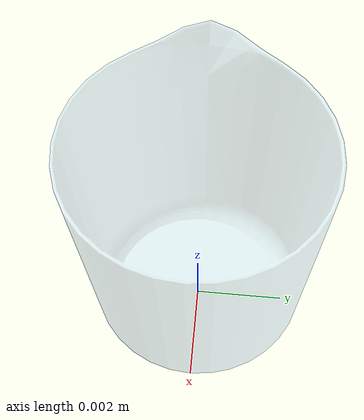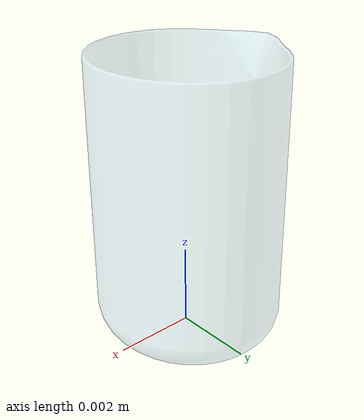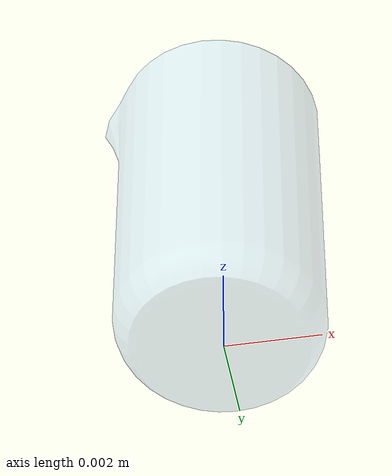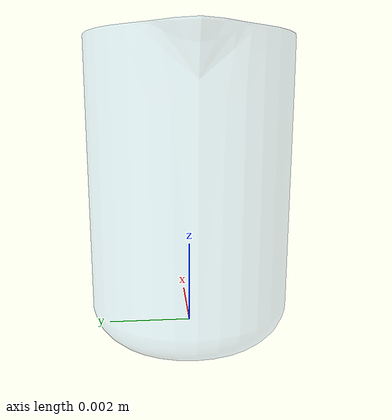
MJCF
<mujoco model="Beaker">
  <!-- XML 位于 model/object，需要返回到 assets -->
  <compiler angle="radian" meshdir="../../assets"/>

  <option gravity="0 0 -9.81"/>

  <asset>
    <!-- 主 mesh -->
    <mesh
      name="beaker_mesh"
      file="Beaker/base.obj"
      scale="0.13 0.13 0.14"/>
  </asset>

  <worldbody>

    <body name="beaker" quat="0.7071 0.7071 0 0"  pos="0.0145 0 -0" >

      <!-- 视觉几何（不参与碰撞） -->
      <geom
        name="beaker_visual"
        type="mesh"
        mesh="beaker_mesh"
        rgba="0.65 0.85 1.0 0.3"
        contype="0"
        conaffinity="0"/>

      <!-- 碰撞几何（用于交互 / 放置） -->
      <geom
        name="glass_sheet_collision_2"
        type="cylinder"
        size="0.00214 0.0002"
        pos="-0.01465 0.000245 -0"
        euler="1.5708 0 0"
        contype="1"
        conaffinity="1"
        friction="0.6 0.2 0.001"
        density="2500"
        rgba="0 0 0 0"/>
      <geom name="ring_1"
        type="box"
        size="0.001 0.0035 0.0001"
        pos="-0.01455 0.0036 -0.0022"
        density="2500"
        contype="1"
        conaffinity="1"
        rgba="0 0 0 0"/>
      <geom name="ring_2"
          type="box"
          size="0.001 0.0035 0.0001"
          pos="-0.01455 0.0036 0.0022"
          density="2500"
          contype="1"
          conaffinity="1"
          rgba="0 0 0 0"/>
      <geom name="ring_3"
        type="box"
        size="0.001 0.0035 0.0001"
        pos="-0.0125 0.0036 -0"
        density="2500"
        contype="1"
        conaffinity="1"
        euler="0 1.5708 0"
        rgba="0 0 0 0"/>
      <geom name="ring_4"
        type="box"
        size="0.001 0.0035 0.0001"
        density="2500"
        pos="-0.017 0.0036 -0"
        contype="1"
        conaffinity="1"
        euler="0 1.5708 0"
        rgba="0 0 0 0"/>
      <geom name="ring_5"
        type="box"
        size="0.001 0.0035 0.0001"
        pos="-0.01634 0.0036 -0.00153"
        density="2500"
        contype="1"
        conaffinity="1"
        euler="0 0.7854 0"
        rgba="0 0 0 0"/>
      <geom name="ring_6"
        type="box"
        size="0.001 0.0035 0.0001"
        pos="-0.0131 0.0036 0.00153"
        density="2500"
        contype="1"
        conaffinity="1"
        euler="0 0.7854 0"
        rgba="0 0 0 0"/>
      <geom name="ring_7"
        type="box"
        size="0.001 0.0035 0.0001"
        pos="-0.01634 0.0036 0.00153"
        density="2500"
        contype="1"
        conaffinity="1"
        euler="0 -0.7854 0"
        rgba="0 0 0 0"/>
      <geom name="ring_8"
        type="box"
        size="0.001 0.0035 0.0001"
        pos="-0.0131 0.0036 -0.00153"
        density="2500"
        contype="1"
        conaffinity="1"
        euler="0 -0.7854 0"
        rgba="0 0 0 0"/>
    </body>
  </worldbody>
</mujoco>
